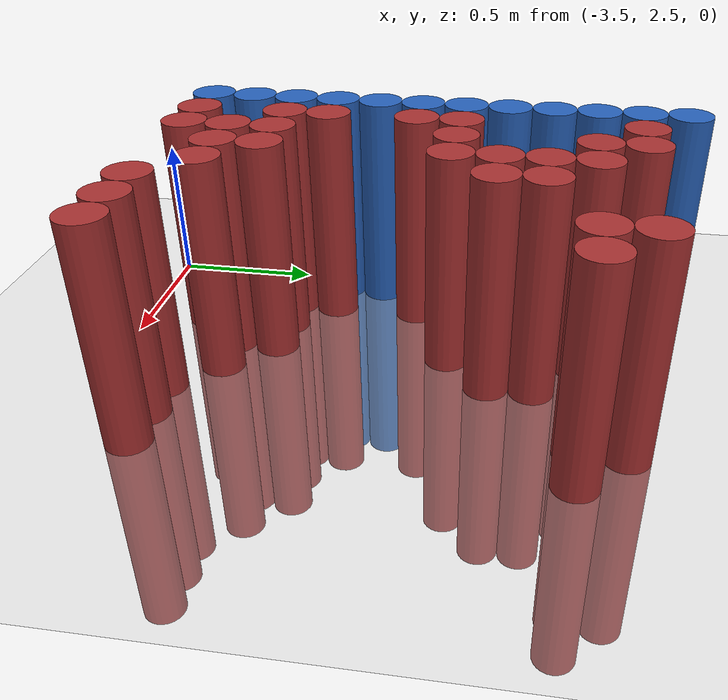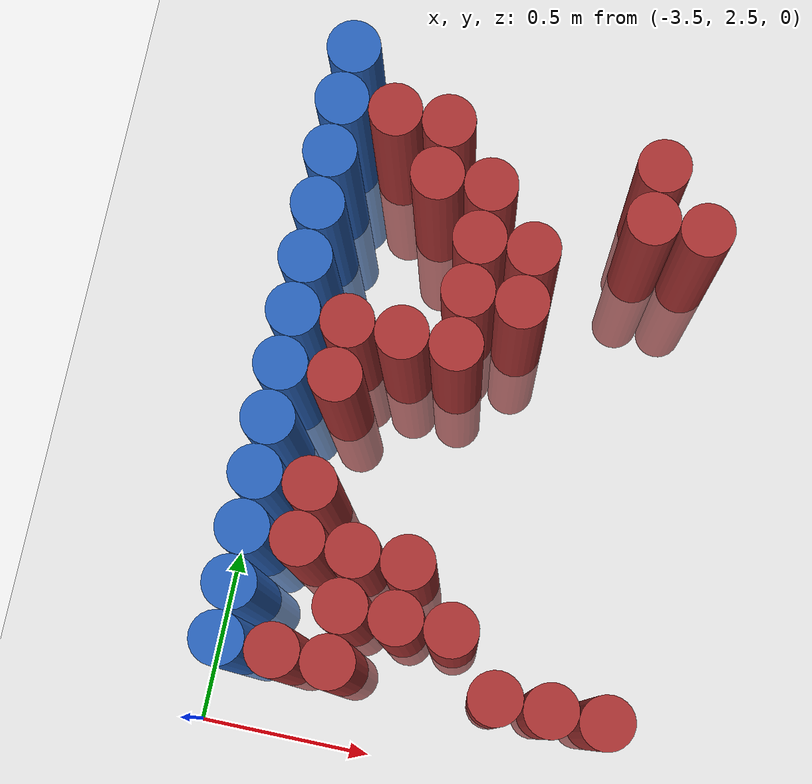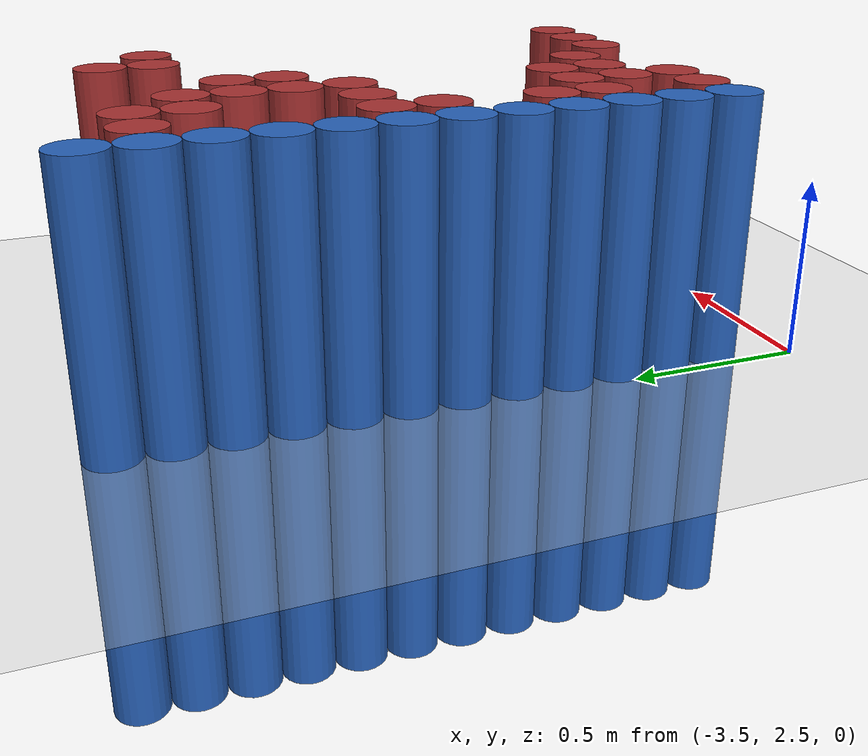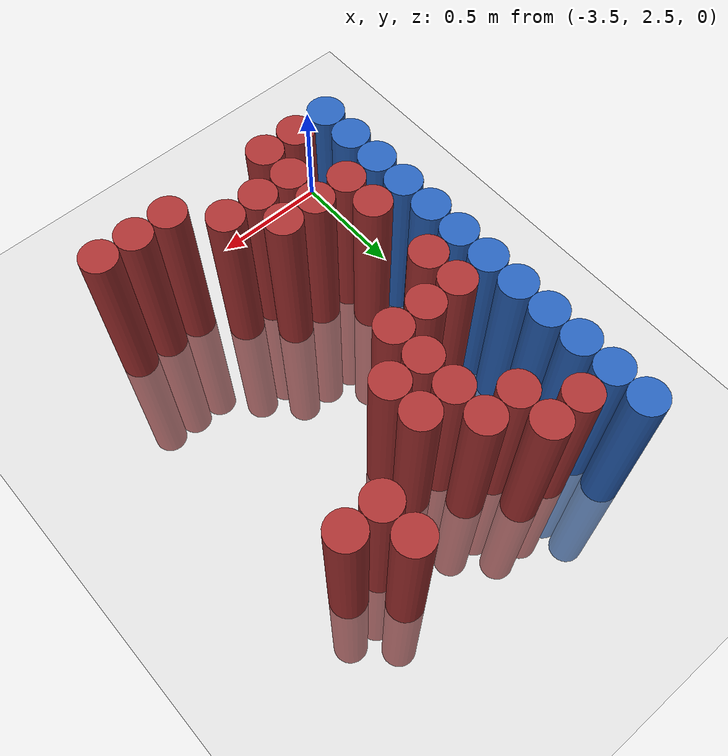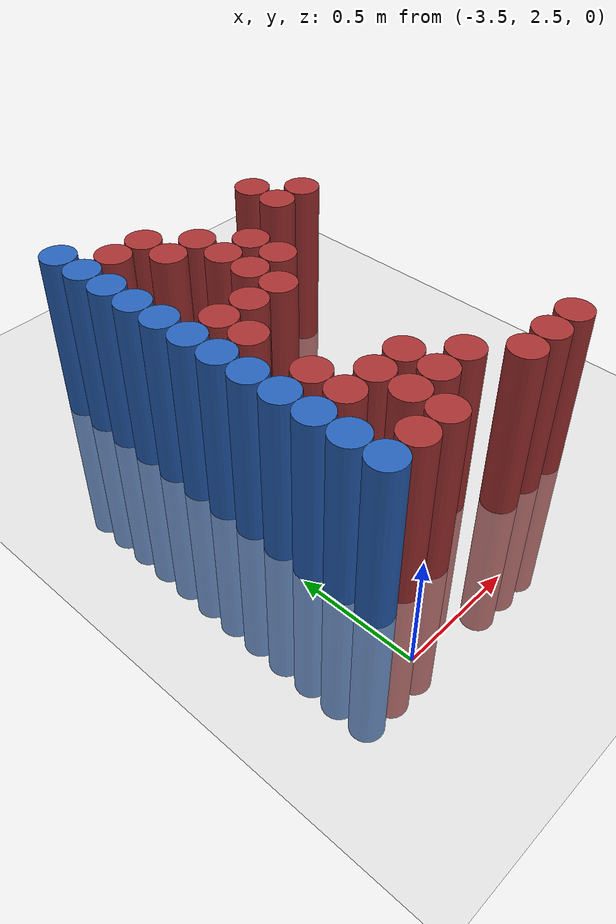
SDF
<sdf version="1.6">
 <world name="default">
  <model name="ground_plane">
   <static>1</static>
   <link name="link">
    <collision name="collision">
     <geometry><plane><normal>0 0 1</normal><size>100 100</size></plane></geometry>
     <surface><friction><ode><mu>100</mu><mu2>50</mu2></ode></friction></surface>
    </collision>
    <visual name="visual">
     <cast_shadows>0</cast_shadows>
     <geometry><plane><normal>0 0 1</normal><size>100 100</size></plane></geometry>
     <material>
      <script><uri>file://media/materials/scripts/gazebo.material</uri><name>Gazebo/Grey</name></script>
     </material>
    </visual>
   </link>
  </model>
  <model name="unit_cylinder_151">
   <static>1</static>
   <pose>-3.425000 2.725000 0.000000 0.000000 0.000000 0.000000</pose>
   <link name="link">
    <inertial>
     <mass>1</mass>
     <inertia><ixx>0.145833</ixx><ixy>0</ixy><ixz>0</ixz><iyy>0.145833</iyy><iyz>0</iyz><izz>0.125</izz></inertia>
    </inertial>
    <collision name="collision">
     <geometry><cylinder><radius>0.075000</radius><length>1.5</length></cylinder></geometry>
    </collision>
    <visual name="visual">
     <geometry><cylinder><radius>0.075000</radius><length>1.5</length></cylinder></geometry>
     <material>
      <ambient>0.152000 0.379000 0.720000 1</ambient>
      <diffuse>0.152000 0.379000 0.720000 1</diffuse>
     </material>
     <material>
      <script><name>Gazebo/Grey</name><uri>file://media/materials/scripts/gazebo.material</uri></script>
     </material>
    </visual>
   </link>
  </model>
  <model name="unit_cylinder_153">
   <static>1</static>
   <pose>-3.425000 2.875000 0.000000 0.000000 0.000000 0.000000</pose>
   <link name="link">
    <inertial>
     <mass>1</mass>
     <inertia><ixx>0.145833</ixx><ixy>0</ixy><ixz>0</ixz><iyy>0.145833</iyy><iyz>0</iyz><izz>0.125</izz></inertia>
    </inertial>
    <collision name="collision">
     <geometry><cylinder><radius>0.075000</radius><length>1.5</length></cylinder></geometry>
    </collision>
    <visual name="visual">
     <geometry><cylinder><radius>0.075000</radius><length>1.5</length></cylinder></geometry>
     <material>
      <ambient>0.152000 0.379000 0.720000 1</ambient>
      <diffuse>0.152000 0.379000 0.720000 1</diffuse>
     </material>
     <material>
      <script><name>Gazebo/Grey</name><uri>file://media/materials/scripts/gazebo.material</uri></script>
     </material>
    </visual>
   </link>
  </model>
  <model name="unit_cylinder_155">
   <static>1</static>
   <pose>-3.425000 3.025000 0.000000 0.000000 0.000000 0.000000</pose>
   <link name="link">
    <inertial>
     <mass>1</mass>
     <inertia><ixx>0.145833</ixx><ixy>0</ixy><ixz>0</ixz><iyy>0.145833</iyy><iyz>0</iyz><izz>0.125</izz></inertia>
    </inertial>
    <collision name="collision">
     <geometry><cylinder><radius>0.075000</radius><length>1.5</length></cylinder></geometry>
    </collision>
    <visual name="visual">
     <geometry><cylinder><radius>0.075000</radius><length>1.5</length></cylinder></geometry>
     <material>
      <ambient>0.152000 0.379000 0.720000 1</ambient>
      <diffuse>0.152000 0.379000 0.720000 1</diffuse>
     </material>
     <material>
      <script><name>Gazebo/Grey</name><uri>file://media/materials/scripts/gazebo.material</uri></script>
     </material>
    </visual>
   </link>
  </model>
  <model name="unit_cylinder_157">
   <static>1</static>
   <pose>-3.425000 3.175000 0.000000 0.000000 0.000000 0.000000</pose>
   <link name="link">
    <inertial>
     <mass>1</mass>
     <inertia><ixx>0.145833</ixx><ixy>0</ixy><ixz>0</ixz><iyy>0.145833</iyy><iyz>0</iyz><izz>0.125</izz></inertia>
    </inertial>
    <collision name="collision">
     <geometry><cylinder><radius>0.075000</radius><length>1.5</length></cylinder></geometry>
    </collision>
    <visual name="visual">
     <geometry><cylinder><radius>0.075000</radius><length>1.5</length></cylinder></geometry>
     <material>
      <ambient>0.152000 0.379000 0.720000 1</ambient>
      <diffuse>0.152000 0.379000 0.720000 1</diffuse>
     </material>
     <material>
      <script><name>Gazebo/Grey</name><uri>file://media/materials/scripts/gazebo.material</uri></script>
     </material>
    </visual>
   </link>
  </model>
  <model name="unit_cylinder_159">
   <static>1</static>
   <pose>-3.425000 3.325000 0.000000 0.000000 0.000000 0.000000</pose>
   <link name="link">
    <inertial>
     <mass>1</mass>
     <inertia><ixx>0.145833</ixx><ixy>0</ixy><ixz>0</ixz><iyy>0.145833</iyy><iyz>0</iyz><izz>0.125</izz></inertia>
    </inertial>
    <collision name="collision">
     <geometry><cylinder><radius>0.075000</radius><length>1.5</length></cylinder></geometry>
    </collision>
    <visual name="visual">
     <geometry><cylinder><radius>0.075000</radius><length>1.5</length></cylinder></geometry>
     <material>
      <ambient>0.152000 0.379000 0.720000 1</ambient>
      <diffuse>0.152000 0.379000 0.720000 1</diffuse>
     </material>
     <material>
      <script><name>Gazebo/Grey</name><uri>file://media/materials/scripts/gazebo.material</uri></script>
     </material>
    </visual>
   </link>
  </model>
  <model name="unit_cylinder_161">
   <static>1</static>
   <pose>-3.425000 3.475000 0.000000 0.000000 0.000000 0.000000</pose>
   <link name="link">
    <inertial>
     <mass>1</mass>
     <inertia><ixx>0.145833</ixx><ixy>0</ixy><ixz>0</ixz><iyy>0.145833</iyy><iyz>0</iyz><izz>0.125</izz></inertia>
    </inertial>
    <collision name="collision">
     <geometry><cylinder><radius>0.075000</radius><length>1.5</length></cylinder></geometry>
    </collision>
    <visual name="visual">
     <geometry><cylinder><radius>0.075000</radius><length>1.5</length></cylinder></geometry>
     <material>
      <ambient>0.152000 0.379000 0.720000 1</ambient>
      <diffuse>0.152000 0.379000 0.720000 1</diffuse>
     </material>
     <material>
      <script><name>Gazebo/Grey</name><uri>file://media/materials/scripts/gazebo.material</uri></script>
     </material>
    </visual>
   </link>
  </model>
  <model name="unit_cylinder_163">
   <static>1</static>
   <pose>-3.425000 3.625000 0.000000 0.000000 0.000000 0.000000</pose>
   <link name="link">
    <inertial>
     <mass>1</mass>
     <inertia><ixx>0.145833</ixx><ixy>0</ixy><ixz>0</ixz><iyy>0.145833</iyy><iyz>0</iyz><izz>0.125</izz></inertia>
    </inertial>
    <collision name="collision">
     <geometry><cylinder><radius>0.075000</radius><length>1.5</length></cylinder></geometry>
    </collision>
    <visual name="visual">
     <geometry><cylinder><radius>0.075000</radius><length>1.5</length></cylinder></geometry>
     <material>
      <ambient>0.152000 0.379000 0.720000 1</ambient>
      <diffuse>0.152000 0.379000 0.720000 1</diffuse>
     </material>
     <material>
      <script><name>Gazebo/Grey</name><uri>file://media/materials/scripts/gazebo.material</uri></script>
     </material>
    </visual>
   </link>
  </model>
  <model name="unit_cylinder_165">
   <static>1</static>
   <pose>-3.425000 3.775000 0.000000 0.000000 0.000000 0.000000</pose>
   <link name="link">
    <inertial>
     <mass>1</mass>
     <inertia><ixx>0.145833</ixx><ixy>0</ixy><ixz>0</ixz><iyy>0.145833</iyy><iyz>0</iyz><izz>0.125</izz></inertia>
    </inertial>
    <collision name="collision">
     <geometry><cylinder><radius>0.075000</radius><length>1.5</length></cylinder></geometry>
    </collision>
    <visual name="visual">
     <geometry><cylinder><radius>0.075000</radius><length>1.5</length></cylinder></geometry>
     <material>
      <ambient>0.152000 0.379000 0.720000 1</ambient>
      <diffuse>0.152000 0.379000 0.720000 1</diffuse>
     </material>
     <material>
      <script><name>Gazebo/Grey</name><uri>file://media/materials/scripts/gazebo.material</uri></script>
     </material>
    </visual>
   </link>
  </model>
  <model name="unit_cylinder_167">
   <static>1</static>
   <pose>-3.425000 3.925000 0.000000 0.000000 0.000000 0.000000</pose>
   <link name="link">
    <inertial>
     <mass>1</mass>
     <inertia><ixx>0.145833</ixx><ixy>0</ixy><ixz>0</ixz><iyy>0.145833</iyy><iyz>0</iyz><izz>0.125</izz></inertia>
    </inertial>
    <collision name="collision">
     <geometry><cylinder><radius>0.075000</radius><length>1.5</length></cylinder></geometry>
    </collision>
    <visual name="visual">
     <geometry><cylinder><radius>0.075000</radius><length>1.5</length></cylinder></geometry>
     <material>
      <ambient>0.152000 0.379000 0.720000 1</ambient>
      <diffuse>0.152000 0.379000 0.720000 1</diffuse>
     </material>
     <material>
      <script><name>Gazebo/Grey</name><uri>file://media/materials/scripts/gazebo.material</uri></script>
     </material>
    </visual>
   </link>
  </model>
  <model name="unit_cylinder_169">
   <static>1</static>
   <pose>-3.425000 4.075000 0.000000 0.000000 0.000000 0.000000</pose>
   <link name="link">
    <inertial>
     <mass>1</mass>
     <inertia><ixx>0.145833</ixx><ixy>0</ixy><ixz>0</ixz><iyy>0.145833</iyy><iyz>0</iyz><izz>0.125</izz></inertia>
    </inertial>
    <collision name="collision">
     <geometry><cylinder><radius>0.075000</radius><length>1.5</length></cylinder></geometry>
    </collision>
    <visual name="visual">
     <geometry><cylinder><radius>0.075000</radius><length>1.5</length></cylinder></geometry>
     <material>
      <ambient>0.152000 0.379000 0.720000 1</ambient>
      <diffuse>0.152000 0.379000 0.720000 1</diffuse>
     </material>
     <material>
      <script><name>Gazebo/Grey</name><uri>file://media/materials/scripts/gazebo.material</uri></script>
     </material>
    </visual>
   </link>
  </model>
  <model name="unit_cylinder_171">
   <static>1</static>
   <pose>-3.425000 4.225000 0.000000 0.000000 0.000000 0.000000</pose>
   <link name="link">
    <inertial>
     <mass>1</mass>
     <inertia><ixx>0.145833</ixx><ixy>0</ixy><ixz>0</ixz><iyy>0.145833</iyy><iyz>0</iyz><izz>0.125</izz></inertia>
    </inertial>
    <collision name="collision">
     <geometry><cylinder><radius>0.075000</radius><length>1.5</length></cylinder></geometry>
    </collision>
    <visual name="visual">
     <geometry><cylinder><radius>0.075000</radius><length>1.5</length></cylinder></geometry>
     <material>
      <ambient>0.152000 0.379000 0.720000 1</ambient>
      <diffuse>0.152000 0.379000 0.720000 1</diffuse>
     </material>
     <material>
      <script><name>Gazebo/Grey</name><uri>file://media/materials/scripts/gazebo.material</uri></script>
     </material>
    </visual>
   </link>
  </model>
  <model name="unit_cylinder_173">
   <static>1</static>
   <pose>-3.425000 4.375000 0.000000 0.000000 0.000000 0.000000</pose>
   <link name="link">
    <inertial>
     <mass>1</mass>
     <inertia><ixx>0.145833</ixx><ixy>0</ixy><ixz>0</ixz><iyy>0.145833</iyy><iyz>0</iyz><izz>0.125</izz></inertia>
    </inertial>
    <collision name="collision">
     <geometry><cylinder><radius>0.075000</radius><length>1.5</length></cylinder></geometry>
    </collision>
    <visual name="visual">
     <geometry><cylinder><radius>0.075000</radius><length>1.5</length></cylinder></geometry>
     <material>
      <ambient>0.152000 0.379000 0.720000 1</ambient>
      <diffuse>0.152000 0.379000 0.720000 1</diffuse>
     </material>
     <material>
      <script><name>Gazebo/Grey</name><uri>file://media/materials/scripts/gazebo.material</uri></script>
     </material>
    </visual>
   </link>
  </model>
  <model name="unit_cylinder_239">
   <static>1</static>
   <pose>-3.425000 2.725000 0.000000 0.000000 0.000000 0.000000</pose>
   <link name="link">
    <inertial>
     <mass>1</mass>
     <inertia><ixx>0.145833</ixx><ixy>0</ixy><ixz>0</ixz><iyy>0.145833</iyy><iyz>0</iyz><izz>0.125</izz></inertia>
    </inertial>
    <collision name="collision">
     <geometry><cylinder><radius>0.075000</radius><length>1.5</length></cylinder></geometry>
    </collision>
    <visual name="visual">
     <geometry><cylinder><radius>0.075000</radius><length>1.5</length></cylinder></geometry>
     <material>
      <ambient>0.152000 0.379000 0.720000 1</ambient>
      <diffuse>0.152000 0.379000 0.720000 1</diffuse>
     </material>
     <material>
      <script><name>Gazebo/Grey</name><uri>file://media/materials/scripts/gazebo.material</uri></script>
     </material>
    </visual>
   </link>
  </model>
  <model name="unit_cylinder_240">
   <static>1</static>
   <pose>-3.425000 2.875000 0.000000 0.000000 0.000000 0.000000</pose>
   <link name="link">
    <inertial>
     <mass>1</mass>
     <inertia><ixx>0.145833</ixx><ixy>0</ixy><ixz>0</ixz><iyy>0.145833</iyy><iyz>0</iyz><izz>0.125</izz></inertia>
    </inertial>
    <collision name="collision">
     <geometry><cylinder><radius>0.075000</radius><length>1.5</length></cylinder></geometry>
    </collision>
    <visual name="visual">
     <geometry><cylinder><radius>0.075000</radius><length>1.5</length></cylinder></geometry>
     <material>
      <ambient>0.152000 0.379000 0.720000 1</ambient>
      <diffuse>0.152000 0.379000 0.720000 1</diffuse>
     </material>
     <material>
      <script><name>Gazebo/Grey</name><uri>file://media/materials/scripts/gazebo.material</uri></script>
     </material>
    </visual>
   </link>
  </model>
  <model name="unit_cylinder_241">
   <static>1</static>
   <pose>-3.425000 3.025000 0.000000 0.000000 0.000000 0.000000</pose>
   <link name="link">
    <inertial>
     <mass>1</mass>
     <inertia><ixx>0.145833</ixx><ixy>0</ixy><ixz>0</ixz><iyy>0.145833</iyy><iyz>0</iyz><izz>0.125</izz></inertia>
    </inertial>
    <collision name="collision">
     <geometry><cylinder><radius>0.075000</radius><length>1.5</length></cylinder></geometry>
    </collision>
    <visual name="visual">
     <geometry><cylinder><radius>0.075000</radius><length>1.5</length></cylinder></geometry>
     <material>
      <ambient>0.152000 0.379000 0.720000 1</ambient>
      <diffuse>0.152000 0.379000 0.720000 1</diffuse>
     </material>
     <material>
      <script><name>Gazebo/Grey</name><uri>file://media/materials/scripts/gazebo.material</uri></script>
     </material>
    </visual>
   </link>
  </model>
  <model name="unit_cylinder_242">
   <static>1</static>
   <pose>-3.425000 3.175000 0.000000 0.000000 0.000000 0.000000</pose>
   <link name="link">
    <inertial>
     <mass>1</mass>
     <inertia><ixx>0.145833</ixx><ixy>0</ixy><ixz>0</ixz><iyy>0.145833</iyy><iyz>0</iyz><izz>0.125</izz></inertia>
    </inertial>
    <collision name="collision">
     <geometry><cylinder><radius>0.075000</radius><length>1.5</length></cylinder></geometry>
    </collision>
    <visual name="visual">
     <geometry><cylinder><radius>0.075000</radius><length>1.5</length></cylinder></geometry>
     <material>
      <ambient>0.152000 0.379000 0.720000 1</ambient>
      <diffuse>0.152000 0.379000 0.720000 1</diffuse>
     </material>
     <material>
      <script><name>Gazebo/Grey</name><uri>file://media/materials/scripts/gazebo.material</uri></script>
     </material>
    </visual>
   </link>
  </model>
  <model name="unit_cylinder_243">
   <static>1</static>
   <pose>-3.425000 3.325000 0.000000 0.000000 0.000000 0.000000</pose>
   <link name="link">
    <inertial>
     <mass>1</mass>
     <inertia><ixx>0.145833</ixx><ixy>0</ixy><ixz>0</ixz><iyy>0.145833</iyy><iyz>0</iyz><izz>0.125</izz></inertia>
    </inertial>
    <collision name="collision">
     <geometry><cylinder><radius>0.075000</radius><length>1.5</length></cylinder></geometry>
    </collision>
    <visual name="visual">
     <geometry><cylinder><radius>0.075000</radius><length>1.5</length></cylinder></geometry>
     <material>
      <ambient>0.152000 0.379000 0.720000 1</ambient>
      <diffuse>0.152000 0.379000 0.720000 1</diffuse>
     </material>
     <material>
      <script><name>Gazebo/Grey</name><uri>file://media/materials/scripts/gazebo.material</uri></script>
     </material>
    </visual>
   </link>
  </model>
  <model name="unit_cylinder_244">
   <static>1</static>
   <pose>-3.425000 3.475000 0.000000 0.000000 0.000000 0.000000</pose>
   <link name="link">
    <inertial>
     <mass>1</mass>
     <inertia><ixx>0.145833</ixx><ixy>0</ixy><ixz>0</ixz><iyy>0.145833</iyy><iyz>0</iyz><izz>0.125</izz></inertia>
    </inertial>
    <collision name="collision">
     <geometry><cylinder><radius>0.075000</radius><length>1.5</length></cylinder></geometry>
    </collision>
    <visual name="visual">
     <geometry><cylinder><radius>0.075000</radius><length>1.5</length></cylinder></geometry>
     <material>
      <ambient>0.152000 0.379000 0.720000 1</ambient>
      <diffuse>0.152000 0.379000 0.720000 1</diffuse>
     </material>
     <material>
      <script><name>Gazebo/Grey</name><uri>file://media/materials/scripts/gazebo.material</uri></script>
     </material>
    </visual>
   </link>
  </model>
  <model name="unit_cylinder_245">
   <static>1</static>
   <pose>-3.425000 3.625000 0.000000 0.000000 0.000000 0.000000</pose>
   <link name="link">
    <inertial>
     <mass>1</mass>
     <inertia><ixx>0.145833</ixx><ixy>0</ixy><ixz>0</ixz><iyy>0.145833</iyy><iyz>0</iyz><izz>0.125</izz></inertia>
    </inertial>
    <collision name="collision">
     <geometry><cylinder><radius>0.075000</radius><length>1.5</length></cylinder></geometry>
    </collision>
    <visual name="visual">
     <geometry><cylinder><radius>0.075000</radius><length>1.5</length></cylinder></geometry>
     <material>
      <ambient>0.152000 0.379000 0.720000 1</ambient>
      <diffuse>0.152000 0.379000 0.720000 1</diffuse>
     </material>
     <material>
      <script><name>Gazebo/Grey</name><uri>file://media/materials/scripts/gazebo.material</uri></script>
     </material>
    </visual>
   </link>
  </model>
  <model name="unit_cylinder_246">
   <static>1</static>
   <pose>-3.425000 3.775000 0.000000 0.000000 0.000000 0.000000</pose>
   <link name="link">
    <inertial>
     <mass>1</mass>
     <inertia><ixx>0.145833</ixx><ixy>0</ixy><ixz>0</ixz><iyy>0.145833</iyy><iyz>0</iyz><izz>0.125</izz></inertia>
    </inertial>
    <collision name="collision">
     <geometry><cylinder><radius>0.075000</radius><length>1.5</length></cylinder></geometry>
    </collision>
    <visual name="visual">
     <geometry><cylinder><radius>0.075000</radius><length>1.5</length></cylinder></geometry>
     <material>
      <ambient>0.152000 0.379000 0.720000 1</ambient>
      <diffuse>0.152000 0.379000 0.720000 1</diffuse>
     </material>
     <material>
      <script><name>Gazebo/Grey</name><uri>file://media/materials/scripts/gazebo.material</uri></script>
     </material>
    </visual>
   </link>
  </model>
  <model name="unit_cylinder_247">
   <static>1</static>
   <pose>-3.425000 3.925000 0.000000 0.000000 0.000000 0.000000</pose>
   <link name="link">
    <inertial>
     <mass>1</mass>
     <inertia><ixx>0.145833</ixx><ixy>0</ixy><ixz>0</ixz><iyy>0.145833</iyy><iyz>0</iyz><izz>0.125</izz></inertia>
    </inertial>
    <collision name="collision">
     <geometry><cylinder><radius>0.075000</radius><length>1.5</length></cylinder></geometry>
    </collision>
    <visual name="visual">
     <geometry><cylinder><radius>0.075000</radius><length>1.5</length></cylinder></geometry>
     <material>
      <ambient>0.152000 0.379000 0.720000 1</ambient>
      <diffuse>0.152000 0.379000 0.720000 1</diffuse>
     </material>
     <material>
      <script><name>Gazebo/Grey</name><uri>file://media/materials/scripts/gazebo.material</uri></script>
     </material>
    </visual>
   </link>
  </model>
  <model name="unit_cylinder_248">
   <static>1</static>
   <pose>-3.425000 4.075000 0.000000 0.000000 0.000000 0.000000</pose>
   <link name="link">
    <inertial>
     <mass>1</mass>
     <inertia><ixx>0.145833</ixx><ixy>0</ixy><ixz>0</ixz><iyy>0.145833</iyy><iyz>0</iyz><izz>0.125</izz></inertia>
    </inertial>
    <collision name="collision">
     <geometry><cylinder><radius>0.075000</radius><length>1.5</length></cylinder></geometry>
    </collision>
    <visual name="visual">
     <geometry><cylinder><radius>0.075000</radius><length>1.5</length></cylinder></geometry>
     <material>
      <ambient>0.152000 0.379000 0.720000 1</ambient>
      <diffuse>0.152000 0.379000 0.720000 1</diffuse>
     </material>
     <material>
      <script><name>Gazebo/Grey</name><uri>file://media/materials/scripts/gazebo.material</uri></script>
     </material>
    </visual>
   </link>
  </model>
  <model name="unit_cylinder_249">
   <static>1</static>
   <pose>-3.425000 4.225000 0.000000 0.000000 0.000000 0.000000</pose>
   <link name="link">
    <inertial>
     <mass>1</mass>
     <inertia><ixx>0.145833</ixx><ixy>0</ixy><ixz>0</ixz><iyy>0.145833</iyy><iyz>0</iyz><izz>0.125</izz></inertia>
    </inertial>
    <collision name="collision">
     <geometry><cylinder><radius>0.075000</radius><length>1.5</length></cylinder></geometry>
    </collision>
    <visual name="visual">
     <geometry><cylinder><radius>0.075000</radius><length>1.5</length></cylinder></geometry>
     <material>
      <ambient>0.152000 0.379000 0.720000 1</ambient>
      <diffuse>0.152000 0.379000 0.720000 1</diffuse>
     </material>
     <material>
      <script><name>Gazebo/Grey</name><uri>file://media/materials/scripts/gazebo.material</uri></script>
     </material>
    </visual>
   </link>
  </model>
  <model name="unit_cylinder_250">
   <static>1</static>
   <pose>-3.425000 4.375000 0.000000 0.000000 0.000000 0.000000</pose>
   <link name="link">
    <inertial>
     <mass>1</mass>
     <inertia><ixx>0.145833</ixx><ixy>0</ixy><ixz>0</ixz><iyy>0.145833</iyy><iyz>0</iyz><izz>0.125</izz></inertia>
    </inertial>
    <collision name="collision">
     <geometry><cylinder><radius>0.075000</radius><length>1.5</length></cylinder></geometry>
    </collision>
    <visual name="visual">
     <geometry><cylinder><radius>0.075000</radius><length>1.5</length></cylinder></geometry>
     <material>
      <ambient>0.152000 0.379000 0.720000 1</ambient>
      <diffuse>0.152000 0.379000 0.720000 1</diffuse>
     </material>
     <material>
      <script><name>Gazebo/Grey</name><uri>file://media/materials/scripts/gazebo.material</uri></script>
     </material>
    </visual>
   </link>
  </model>
  <model name="unit_cylinder_274">
   <static>1</static>
   <pose>-3.275000 2.725000 0.000000 0.000000 0.000000 0.000000</pose>
   <link name="link">
    <inertial>
     <mass>1</mass>
     <inertia><ixx>0.145833</ixx><ixy>0</ixy><ixz>0</ixz><iyy>0.145833</iyy><iyz>0</iyz><izz>0.125</izz></inertia>
    </inertial>
    <collision name="collision">
     <geometry><cylinder><radius>0.075000</radius><length>1.5</length></cylinder></geometry>
    </collision>
    <visual name="visual">
     <geometry><cylinder><radius>0.075000</radius><length>1.5</length></cylinder></geometry>
     <material>
      <ambient>0.648000 0.192000 0.192000 1</ambient>
      <diffuse>0.648000 0.192000 0.192000 1</diffuse>
     </material>
     <material>
      <script><name>Gazebo/Grey</name><uri>file://media/materials/scripts/gazebo.material</uri></script>
     </material>
    </visual>
   </link>
  </model>
  <model name="unit_cylinder_275">
   <static>1</static>
   <pose>-3.275000 3.025000 0.000000 0.000000 0.000000 0.000000</pose>
   <link name="link">
    <inertial>
     <mass>1</mass>
     <inertia><ixx>0.145833</ixx><ixy>0</ixy><ixz>0</ixz><iyy>0.145833</iyy><iyz>0</iyz><izz>0.125</izz></inertia>
    </inertial>
    <collision name="collision">
     <geometry><cylinder><radius>0.075000</radius><length>1.5</length></cylinder></geometry>
    </collision>
    <visual name="visual">
     <geometry><cylinder><radius>0.075000</radius><length>1.5</length></cylinder></geometry>
     <material>
      <ambient>0.648000 0.192000 0.192000 1</ambient>
      <diffuse>0.648000 0.192000 0.192000 1</diffuse>
     </material>
     <material>
      <script><name>Gazebo/Grey</name><uri>file://media/materials/scripts/gazebo.material</uri></script>
     </material>
    </visual>
   </link>
  </model>
  <model name="unit_cylinder_276">
   <static>1</static>
   <pose>-3.275000 3.175000 0.000000 0.000000 0.000000 0.000000</pose>
   <link name="link">
    <inertial>
     <mass>1</mass>
     <inertia><ixx>0.145833</ixx><ixy>0</ixy><ixz>0</ixz><iyy>0.145833</iyy><iyz>0</iyz><izz>0.125</izz></inertia>
    </inertial>
    <collision name="collision">
     <geometry><cylinder><radius>0.075000</radius><length>1.5</length></cylinder></geometry>
    </collision>
    <visual name="visual">
     <geometry><cylinder><radius>0.075000</radius><length>1.5</length></cylinder></geometry>
     <material>
      <ambient>0.648000 0.192000 0.192000 1</ambient>
      <diffuse>0.648000 0.192000 0.192000 1</diffuse>
     </material>
     <material>
      <script><name>Gazebo/Grey</name><uri>file://media/materials/scripts/gazebo.material</uri></script>
     </material>
    </visual>
   </link>
  </model>
  <model name="unit_cylinder_277">
   <static>1</static>
   <pose>-3.275000 3.475000 0.000000 0.000000 0.000000 0.000000</pose>
   <link name="link">
    <inertial>
     <mass>1</mass>
     <inertia><ixx>0.145833</ixx><ixy>0</ixy><ixz>0</ixz><iyy>0.145833</iyy><iyz>0</iyz><izz>0.125</izz></inertia>
    </inertial>
    <collision name="collision">
     <geometry><cylinder><radius>0.075000</radius><length>1.5</length></cylinder></geometry>
    </collision>
    <visual name="visual">
     <geometry><cylinder><radius>0.075000</radius><length>1.5</length></cylinder></geometry>
     <material>
      <ambient>0.648000 0.192000 0.192000 1</ambient>
      <diffuse>0.648000 0.192000 0.192000 1</diffuse>
     </material>
     <material>
      <script><name>Gazebo/Grey</name><uri>file://media/materials/scripts/gazebo.material</uri></script>
     </material>
    </visual>
   </link>
  </model>
  <model name="unit_cylinder_278">
   <static>1</static>
   <pose>-3.275000 3.625000 0.000000 0.000000 0.000000 0.000000</pose>
   <link name="link">
    <inertial>
     <mass>1</mass>
     <inertia><ixx>0.145833</ixx><ixy>0</ixy><ixz>0</ixz><iyy>0.145833</iyy><iyz>0</iyz><izz>0.125</izz></inertia>
    </inertial>
    <collision name="collision">
     <geometry><cylinder><radius>0.075000</radius><length>1.5</length></cylinder></geometry>
    </collision>
    <visual name="visual">
     <geometry><cylinder><radius>0.075000</radius><length>1.5</length></cylinder></geometry>
     <material>
      <ambient>0.648000 0.192000 0.192000 1</ambient>
      <diffuse>0.648000 0.192000 0.192000 1</diffuse>
     </material>
     <material>
      <script><name>Gazebo/Grey</name><uri>file://media/materials/scripts/gazebo.material</uri></script>
     </material>
    </visual>
   </link>
  </model>
  <model name="unit_cylinder_279">
   <static>1</static>
   <pose>-3.275000 4.225000 0.000000 0.000000 0.000000 0.000000</pose>
   <link name="link">
    <inertial>
     <mass>1</mass>
     <inertia><ixx>0.145833</ixx><ixy>0</ixy><ixz>0</ixz><iyy>0.145833</iyy><iyz>0</iyz><izz>0.125</izz></inertia>
    </inertial>
    <collision name="collision">
     <geometry><cylinder><radius>0.075000</radius><length>1.5</length></cylinder></geometry>
    </collision>
    <visual name="visual">
     <geometry><cylinder><radius>0.075000</radius><length>1.5</length></cylinder></geometry>
     <material>
      <ambient>0.648000 0.192000 0.192000 1</ambient>
      <diffuse>0.648000 0.192000 0.192000 1</diffuse>
     </material>
     <material>
      <script><name>Gazebo/Grey</name><uri>file://media/materials/scripts/gazebo.material</uri></script>
     </material>
    </visual>
   </link>
  </model>
  <model name="unit_cylinder_292">
   <static>1</static>
   <pose>-3.125000 2.725000 0.000000 0.000000 0.000000 0.000000</pose>
   <link name="link">
    <inertial>
     <mass>1</mass>
     <inertia><ixx>0.145833</ixx><ixy>0</ixy><ixz>0</ixz><iyy>0.145833</iyy><iyz>0</iyz><izz>0.125</izz></inertia>
    </inertial>
    <collision name="collision">
     <geometry><cylinder><radius>0.075000</radius><length>1.5</length></cylinder></geometry>
    </collision>
    <visual name="visual">
     <geometry><cylinder><radius>0.075000</radius><length>1.5</length></cylinder></geometry>
     <material>
      <ambient>0.648000 0.192000 0.192000 1</ambient>
      <diffuse>0.648000 0.192000 0.192000 1</diffuse>
     </material>
     <material>
      <script><name>Gazebo/Grey</name><uri>file://media/materials/scripts/gazebo.material</uri></script>
     </material>
    </visual>
   </link>
  </model>
  <model name="unit_cylinder_293">
   <static>1</static>
   <pose>-3.125000 2.875000 0.000000 0.000000 0.000000 0.000000</pose>
   <link name="link">
    <inertial>
     <mass>1</mass>
     <inertia><ixx>0.145833</ixx><ixy>0</ixy><ixz>0</ixz><iyy>0.145833</iyy><iyz>0</iyz><izz>0.125</izz></inertia>
    </inertial>
    <collision name="collision">
     <geometry><cylinder><radius>0.075000</radius><length>1.5</length></cylinder></geometry>
    </collision>
    <visual name="visual">
     <geometry><cylinder><radius>0.075000</radius><length>1.5</length></cylinder></geometry>
     <material>
      <ambient>0.648000 0.192000 0.192000 1</ambient>
      <diffuse>0.648000 0.192000 0.192000 1</diffuse>
     </material>
     <material>
      <script><name>Gazebo/Grey</name><uri>file://media/materials/scripts/gazebo.material</uri></script>
     </material>
    </visual>
   </link>
  </model>
  <model name="unit_cylinder_294">
   <static>1</static>
   <pose>-3.125000 3.025000 0.000000 0.000000 0.000000 0.000000</pose>
   <link name="link">
    <inertial>
     <mass>1</mass>
     <inertia><ixx>0.145833</ixx><ixy>0</ixy><ixz>0</ixz><iyy>0.145833</iyy><iyz>0</iyz><izz>0.125</izz></inertia>
    </inertial>
    <collision name="collision">
     <geometry><cylinder><radius>0.075000</radius><length>1.5</length></cylinder></geometry>
    </collision>
    <visual name="visual">
     <geometry><cylinder><radius>0.075000</radius><length>1.5</length></cylinder></geometry>
     <material>
      <ambient>0.648000 0.192000 0.192000 1</ambient>
      <diffuse>0.648000 0.192000 0.192000 1</diffuse>
     </material>
     <material>
      <script><name>Gazebo/Grey</name><uri>file://media/materials/scripts/gazebo.material</uri></script>
     </material>
    </visual>
   </link>
  </model>
  <model name="unit_cylinder_295">
   <static>1</static>
   <pose>-3.125000 3.625000 0.000000 0.000000 0.000000 0.000000</pose>
   <link name="link">
    <inertial>
     <mass>1</mass>
     <inertia><ixx>0.145833</ixx><ixy>0</ixy><ixz>0</ixz><iyy>0.145833</iyy><iyz>0</iyz><izz>0.125</izz></inertia>
    </inertial>
    <collision name="collision">
     <geometry><cylinder><radius>0.075000</radius><length>1.5</length></cylinder></geometry>
    </collision>
    <visual name="visual">
     <geometry><cylinder><radius>0.075000</radius><length>1.5</length></cylinder></geometry>
     <material>
      <ambient>0.648000 0.192000 0.192000 1</ambient>
      <diffuse>0.648000 0.192000 0.192000 1</diffuse>
     </material>
     <material>
      <script><name>Gazebo/Grey</name><uri>file://media/materials/scripts/gazebo.material</uri></script>
     </material>
    </visual>
   </link>
  </model>
  <model name="unit_cylinder_296">
   <static>1</static>
   <pose>-3.125000 4.075000 0.000000 0.000000 0.000000 0.000000</pose>
   <link name="link">
    <inertial>
     <mass>1</mass>
     <inertia><ixx>0.145833</ixx><ixy>0</ixy><ixz>0</ixz><iyy>0.145833</iyy><iyz>0</iyz><izz>0.125</izz></inertia>
    </inertial>
    <collision name="collision">
     <geometry><cylinder><radius>0.075000</radius><length>1.5</length></cylinder></geometry>
    </collision>
    <visual name="visual">
     <geometry><cylinder><radius>0.075000</radius><length>1.5</length></cylinder></geometry>
     <material>
      <ambient>0.648000 0.192000 0.192000 1</ambient>
      <diffuse>0.648000 0.192000 0.192000 1</diffuse>
     </material>
     <material>
      <script><name>Gazebo/Grey</name><uri>file://media/materials/scripts/gazebo.material</uri></script>
     </material>
    </visual>
   </link>
  </model>
  <model name="unit_cylinder_297">
   <static>1</static>
   <pose>-3.125000 4.225000 0.000000 0.000000 0.000000 0.000000</pose>
   <link name="link">
    <inertial>
     <mass>1</mass>
     <inertia><ixx>0.145833</ixx><ixy>0</ixy><ixz>0</ixz><iyy>0.145833</iyy><iyz>0</iyz><izz>0.125</izz></inertia>
    </inertial>
    <collision name="collision">
     <geometry><cylinder><radius>0.075000</radius><length>1.5</length></cylinder></geometry>
    </collision>
    <visual name="visual">
     <geometry><cylinder><radius>0.075000</radius><length>1.5</length></cylinder></geometry>
     <material>
      <ambient>0.648000 0.192000 0.192000 1</ambient>
      <diffuse>0.648000 0.192000 0.192000 1</diffuse>
     </material>
     <material>
      <script><name>Gazebo/Grey</name><uri>file://media/materials/scripts/gazebo.material</uri></script>
     </material>
    </visual>
   </link>
  </model>
  <model name="unit_cylinder_305">
   <static>1</static>
   <pose>-2.975000 2.875000 0.000000 0.000000 0.000000 0.000000</pose>
   <link name="link">
    <inertial>
     <mass>1</mass>
     <inertia><ixx>0.145833</ixx><ixy>0</ixy><ixz>0</ixz><iyy>0.145833</iyy><iyz>0</iyz><izz>0.125</izz></inertia>
    </inertial>
    <collision name="collision">
     <geometry><cylinder><radius>0.075000</radius><length>1.5</length></cylinder></geometry>
    </collision>
    <visual name="visual">
     <geometry><cylinder><radius>0.075000</radius><length>1.5</length></cylinder></geometry>
     <material>
      <ambient>0.648000 0.192000 0.192000 1</ambient>
      <diffuse>0.648000 0.192000 0.192000 1</diffuse>
     </material>
     <material>
      <script><name>Gazebo/Grey</name><uri>file://media/materials/scripts/gazebo.material</uri></script>
     </material>
    </visual>
   </link>
  </model>
  <model name="unit_cylinder_306">
   <static>1</static>
   <pose>-2.975000 3.025000 0.000000 0.000000 0.000000 0.000000</pose>
   <link name="link">
    <inertial>
     <mass>1</mass>
     <inertia><ixx>0.145833</ixx><ixy>0</ixy><ixz>0</ixz><iyy>0.145833</iyy><iyz>0</iyz><izz>0.125</izz></inertia>
    </inertial>
    <collision name="collision">
     <geometry><cylinder><radius>0.075000</radius><length>1.5</length></cylinder></geometry>
    </collision>
    <visual name="visual">
     <geometry><cylinder><radius>0.075000</radius><length>1.5</length></cylinder></geometry>
     <material>
      <ambient>0.648000 0.192000 0.192000 1</ambient>
      <diffuse>0.648000 0.192000 0.192000 1</diffuse>
     </material>
     <material>
      <script><name>Gazebo/Grey</name><uri>file://media/materials/scripts/gazebo.material</uri></script>
     </material>
    </visual>
   </link>
  </model>
  <model name="unit_cylinder_307">
   <static>1</static>
   <pose>-2.975000 3.625000 0.000000 0.000000 0.000000 0.000000</pose>
   <link name="link">
    <inertial>
     <mass>1</mass>
     <inertia><ixx>0.145833</ixx><ixy>0</ixy><ixz>0</ixz><iyy>0.145833</iyy><iyz>0</iyz><izz>0.125</izz></inertia>
    </inertial>
    <collision name="collision">
     <geometry><cylinder><radius>0.075000</radius><length>1.5</length></cylinder></geometry>
    </collision>
    <visual name="visual">
     <geometry><cylinder><radius>0.075000</radius><length>1.5</length></cylinder></geometry>
     <material>
      <ambient>0.648000 0.192000 0.192000 1</ambient>
      <diffuse>0.648000 0.192000 0.192000 1</diffuse>
     </material>
     <material>
      <script><name>Gazebo/Grey</name><uri>file://media/materials/scripts/gazebo.material</uri></script>
     </material>
    </visual>
   </link>
  </model>
  <model name="unit_cylinder_308">
   <static>1</static>
   <pose>-2.975000 3.775000 0.000000 0.000000 0.000000 0.000000</pose>
   <link name="link">
    <inertial>
     <mass>1</mass>
     <inertia><ixx>0.145833</ixx><ixy>0</ixy><ixz>0</ixz><iyy>0.145833</iyy><iyz>0</iyz><izz>0.125</izz></inertia>
    </inertial>
    <collision name="collision">
     <geometry><cylinder><radius>0.075000</radius><length>1.5</length></cylinder></geometry>
    </collision>
    <visual name="visual">
     <geometry><cylinder><radius>0.075000</radius><length>1.5</length></cylinder></geometry>
     <material>
      <ambient>0.648000 0.192000 0.192000 1</ambient>
      <diffuse>0.648000 0.192000 0.192000 1</diffuse>
     </material>
     <material>
      <script><name>Gazebo/Grey</name><uri>file://media/materials/scripts/gazebo.material</uri></script>
     </material>
    </visual>
   </link>
  </model>
  <model name="unit_cylinder_309">
   <static>1</static>
   <pose>-2.975000 3.925000 0.000000 0.000000 0.000000 0.000000</pose>
   <link name="link">
    <inertial>
     <mass>1</mass>
     <inertia><ixx>0.145833</ixx><ixy>0</ixy><ixz>0</ixz><iyy>0.145833</iyy><iyz>0</iyz><izz>0.125</izz></inertia>
    </inertial>
    <collision name="collision">
     <geometry><cylinder><radius>0.075000</radius><length>1.5</length></cylinder></geometry>
    </collision>
    <visual name="visual">
     <geometry><cylinder><radius>0.075000</radius><length>1.5</length></cylinder></geometry>
     <material>
      <ambient>0.648000 0.192000 0.192000 1</ambient>
      <diffuse>0.648000 0.192000 0.192000 1</diffuse>
     </material>
     <material>
      <script><name>Gazebo/Grey</name><uri>file://media/materials/scripts/gazebo.material</uri></script>
     </material>
    </visual>
   </link>
  </model>
  <model name="unit_cylinder_310">
   <static>1</static>
   <pose>-2.975000 4.075000 0.000000 0.000000 0.000000 0.000000</pose>
   <link name="link">
    <inertial>
     <mass>1</mass>
     <inertia><ixx>0.145833</ixx><ixy>0</ixy><ixz>0</ixz><iyy>0.145833</iyy><iyz>0</iyz><izz>0.125</izz></inertia>
    </inertial>
    <collision name="collision">
     <geometry><cylinder><radius>0.075000</radius><length>1.5</length></cylinder></geometry>
    </collision>
    <visual name="visual">
     <geometry><cylinder><radius>0.075000</radius><length>1.5</length></cylinder></geometry>
     <material>
      <ambient>0.648000 0.192000 0.192000 1</ambient>
      <diffuse>0.648000 0.192000 0.192000 1</diffuse>
     </material>
     <material>
      <script><name>Gazebo/Grey</name><uri>file://media/materials/scripts/gazebo.material</uri></script>
     </material>
    </visual>
   </link>
  </model>
  <model name="unit_cylinder_314">
   <static>1</static>
   <pose>-2.825000 2.875000 0.000000 0.000000 0.000000 0.000000</pose>
   <link name="link">
    <inertial>
     <mass>1</mass>
     <inertia><ixx>0.145833</ixx><ixy>0</ixy><ixz>0</ixz><iyy>0.145833</iyy><iyz>0</iyz><izz>0.125</izz></inertia>
    </inertial>
    <collision name="collision">
     <geometry><cylinder><radius>0.075000</radius><length>1.5</length></cylinder></geometry>
    </collision>
    <visual name="visual">
     <geometry><cylinder><radius>0.075000</radius><length>1.5</length></cylinder></geometry>
     <material>
      <ambient>0.648000 0.192000 0.192000 1</ambient>
      <diffuse>0.648000 0.192000 0.192000 1</diffuse>
     </material>
     <material>
      <script><name>Gazebo/Grey</name><uri>file://media/materials/scripts/gazebo.material</uri></script>
     </material>
    </visual>
   </link>
  </model>
  <model name="unit_cylinder_315">
   <static>1</static>
   <pose>-2.825000 3.775000 0.000000 0.000000 0.000000 0.000000</pose>
   <link name="link">
    <inertial>
     <mass>1</mass>
     <inertia><ixx>0.145833</ixx><ixy>0</ixy><ixz>0</ixz><iyy>0.145833</iyy><iyz>0</iyz><izz>0.125</izz></inertia>
    </inertial>
    <collision name="collision">
     <geometry><cylinder><radius>0.075000</radius><length>1.5</length></cylinder></geometry>
    </collision>
    <visual name="visual">
     <geometry><cylinder><radius>0.075000</radius><length>1.5</length></cylinder></geometry>
     <material>
      <ambient>0.648000 0.192000 0.192000 1</ambient>
      <diffuse>0.648000 0.192000 0.192000 1</diffuse>
     </material>
     <material>
      <script><name>Gazebo/Grey</name><uri>file://media/materials/scripts/gazebo.material</uri></script>
     </material>
    </visual>
   </link>
  </model>
  <model name="unit_cylinder_316">
   <static>1</static>
   <pose>-2.825000 3.925000 0.000000 0.000000 0.000000 0.000000</pose>
   <link name="link">
    <inertial>
     <mass>1</mass>
     <inertia><ixx>0.145833</ixx><ixy>0</ixy><ixz>0</ixz><iyy>0.145833</iyy><iyz>0</iyz><izz>0.125</izz></inertia>
    </inertial>
    <collision name="collision">
     <geometry><cylinder><radius>0.075000</radius><length>1.5</length></cylinder></geometry>
    </collision>
    <visual name="visual">
     <geometry><cylinder><radius>0.075000</radius><length>1.5</length></cylinder></geometry>
     <material>
      <ambient>0.648000 0.192000 0.192000 1</ambient>
      <diffuse>0.648000 0.192000 0.192000 1</diffuse>
     </material>
     <material>
      <script><name>Gazebo/Grey</name><uri>file://media/materials/scripts/gazebo.material</uri></script>
     </material>
    </visual>
   </link>
  </model>
  <model name="unit_cylinder_321">
   <static>1</static>
   <pose>-2.675000 2.725000 0.000000 0.000000 0.000000 0.000000</pose>
   <link name="link">
    <inertial>
     <mass>1</mass>
     <inertia><ixx>0.145833</ixx><ixy>0</ixy><ixz>0</ixz><iyy>0.145833</iyy><iyz>0</iyz><izz>0.125</izz></inertia>
    </inertial>
    <collision name="collision">
     <geometry><cylinder><radius>0.075000</radius><length>1.5</length></cylinder></geometry>
    </collision>
    <visual name="visual">
     <geometry><cylinder><radius>0.075000</radius><length>1.5</length></cylinder></geometry>
     <material>
      <ambient>0.648000 0.192000 0.192000 1</ambient>
      <diffuse>0.648000 0.192000 0.192000 1</diffuse>
     </material>
     <material>
      <script><name>Gazebo/Grey</name><uri>file://media/materials/scripts/gazebo.material</uri></script>
     </material>
    </visual>
   </link>
  </model>
  <model name="unit_cylinder_328">
   <static>1</static>
   <pose>-2.525000 2.725000 0.000000 0.000000 0.000000 0.000000</pose>
   <link name="link">
    <inertial>
     <mass>1</mass>
     <inertia><ixx>0.145833</ixx><ixy>0</ixy><ixz>0</ixz><iyy>0.145833</iyy><iyz>0</iyz><izz>0.125</izz></inertia>
    </inertial>
    <collision name="collision">
     <geometry><cylinder><radius>0.075000</radius><length>1.5</length></cylinder></geometry>
    </collision>
    <visual name="visual">
     <geometry><cylinder><radius>0.075000</radius><length>1.5</length></cylinder></geometry>
     <material>
      <ambient>0.648000 0.192000 0.192000 1</ambient>
      <diffuse>0.648000 0.192000 0.192000 1</diffuse>
     </material>
     <material>
      <script><name>Gazebo/Grey</name><uri>file://media/materials/scripts/gazebo.material</uri></script>
     </material>
    </visual>
   </link>
  </model>
  <model name="unit_cylinder_329">
   <static>1</static>
   <pose>-2.525000 4.075000 0.000000 0.000000 0.000000 0.000000</pose>
   <link name="link">
    <inertial>
     <mass>1</mass>
     <inertia><ixx>0.145833</ixx><ixy>0</ixy><ixz>0</ixz><iyy>0.145833</iyy><iyz>0</iyz><izz>0.125</izz></inertia>
    </inertial>
    <collision name="collision">
     <geometry><cylinder><radius>0.075000</radius><length>1.5</length></cylinder></geometry>
    </collision>
    <visual name="visual">
     <geometry><cylinder><radius>0.075000</radius><length>1.5</length></cylinder></geometry>
     <material>
      <ambient>0.648000 0.192000 0.192000 1</ambient>
      <diffuse>0.648000 0.192000 0.192000 1</diffuse>
     </material>
     <material>
      <script><name>Gazebo/Grey</name><uri>file://media/materials/scripts/gazebo.material</uri></script>
     </material>
    </visual>
   </link>
  </model>
  <model name="unit_cylinder_330">
   <static>1</static>
   <pose>-2.525000 4.225000 0.000000 0.000000 0.000000 0.000000</pose>
   <link name="link">
    <inertial>
     <mass>1</mass>
     <inertia><ixx>0.145833</ixx><ixy>0</ixy><ixz>0</ixz><iyy>0.145833</iyy><iyz>0</iyz><izz>0.125</izz></inertia>
    </inertial>
    <collision name="collision">
     <geometry><cylinder><radius>0.075000</radius><length>1.5</length></cylinder></geometry>
    </collision>
    <visual name="visual">
     <geometry><cylinder><radius>0.075000</radius><length>1.5</length></cylinder></geometry>
     <material>
      <ambient>0.648000 0.192000 0.192000 1</ambient>
      <diffuse>0.648000 0.192000 0.192000 1</diffuse>
     </material>
     <material>
      <script><name>Gazebo/Grey</name><uri>file://media/materials/scripts/gazebo.material</uri></script>
     </material>
    </visual>
   </link>
  </model>
  <model name="unit_cylinder_336">
   <static>1</static>
   <pose>-2.375000 2.725000 0.000000 0.000000 0.000000 0.000000</pose>
   <link name="link">
    <inertial>
     <mass>1</mass>
     <inertia><ixx>0.145833</ixx><ixy>0</ixy><ixz>0</ixz><iyy>0.145833</iyy><iyz>0</iyz><izz>0.125</izz></inertia>
    </inertial>
    <collision name="collision">
     <geometry><cylinder><radius>0.075000</radius><length>1.5</length></cylinder></geometry>
    </collision>
    <visual name="visual">
     <geometry><cylinder><radius>0.075000</radius><length>1.5</length></cylinder></geometry>
     <material>
      <ambient>0.648000 0.192000 0.192000 1</ambient>
      <diffuse>0.648000 0.192000 0.192000 1</diffuse>
     </material>
     <material>
      <script><name>Gazebo/Grey</name><uri>file://media/materials/scripts/gazebo.material</uri></script>
     </material>
    </visual>
   </link>
  </model>
  <model name="unit_cylinder_337">
   <static>1</static>
   <pose>-2.375000 4.075000 0.000000 0.000000 0.000000 0.000000</pose>
   <link name="link">
    <inertial>
     <mass>1</mass>
     <inertia><ixx>0.145833</ixx><ixy>0</ixy><ixz>0</ixz><iyy>0.145833</iyy><iyz>0</iyz><izz>0.125</izz></inertia>
    </inertial>
    <collision name="collision">
     <geometry><cylinder><radius>0.075000</radius><length>1.5</length></cylinder></geometry>
    </collision>
    <visual name="visual">
     <geometry><cylinder><radius>0.075000</radius><length>1.5</length></cylinder></geometry>
     <material>
      <ambient>0.648000 0.192000 0.192000 1</ambient>
      <diffuse>0.648000 0.192000 0.192000 1</diffuse>
     </material>
     <material>
      <script><name>Gazebo/Grey</name><uri>file://media/materials/scripts/gazebo.material</uri></script>
     </material>
    </visual>
   </link>
  </model>
 </world>
</sdf>
